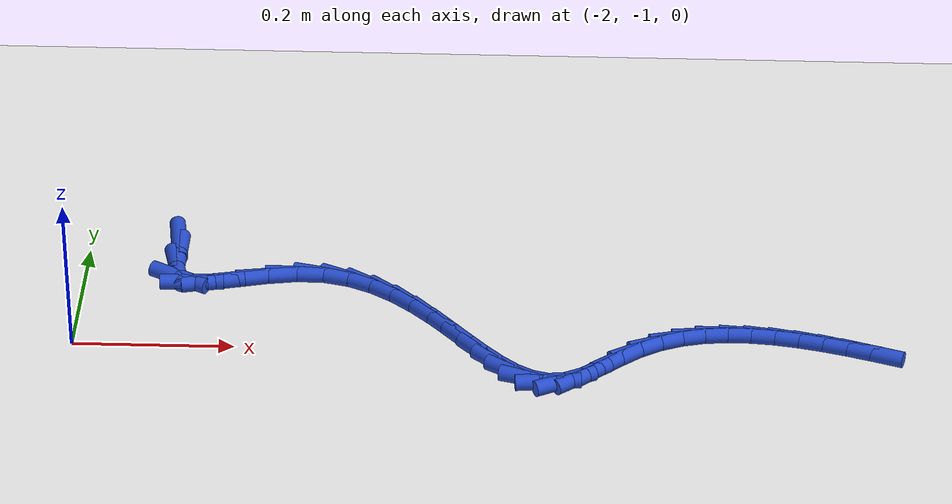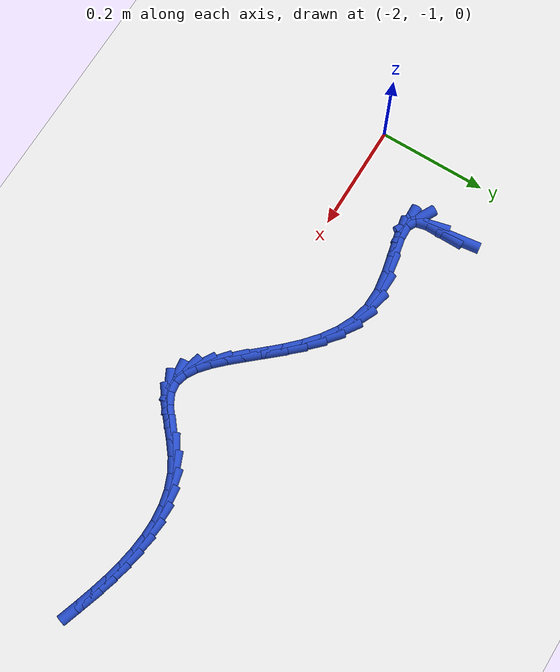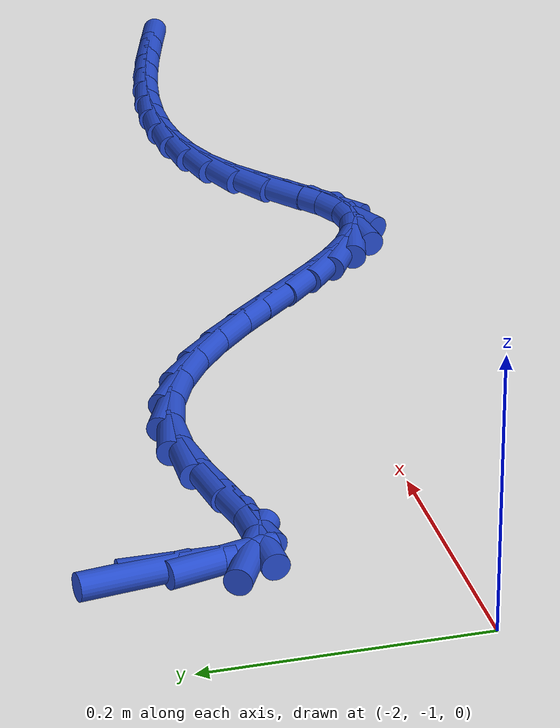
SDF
<sdf version="1.6">
 <world name="default">
  <model name="ground_plane">
   <static>1</static>
   <link name="link">
    <collision name="collision">
     <geometry><plane><normal>0 0 1</normal><size>100 100</size></plane></geometry>
     <surface><friction><ode><mu>100</mu><mu2>50</mu2></ode></friction></surface>
    </collision>
    <visual name="visual">
     <cast_shadows>0</cast_shadows>
     <geometry><plane><normal>0 0 1</normal><size>100 100</size></plane></geometry>
     <material>
      <script><uri>file://media/materials/scripts/gazebo.material</uri><name>Gazebo/WhiteGlow</name></script>
     </material>
    </visual>
   </link>
  </model>
  <model name="line">
   <link name="link_189">
    <pose>-1.8894098902142313 -0.7863409805714017 0.01 0 1.57 -1.4395457866967434</pose>
    <collision name="collision">
     <geometry><cylinder><radius>0.01</radius><length>0.08</length></cylinder></geometry>
    </collision>
    <visual name="visual">
     <material>
      <script><name>Gazebo/Blue</name><uri>file://media/materials/scripts/gazebo.material</uri></script>
     </material>
     <geometry><cylinder><radius>0.01</radius><length>0.08</length></cylinder></geometry>
    </visual>
   </link>
   <link name="link_190">
    <pose>-1.8855369141862686 -0.8156796096133156 0.01 0 1.57 1.5640217590703558</pose>
    <collision name="collision">
     <geometry><cylinder><radius>0.01</radius><length>0.08</length></cylinder></geometry>
    </collision>
    <visual name="visual">
     <material>
      <script><name>Gazebo/Blue</name><uri>file://media/materials/scripts/gazebo.material</uri></script>
     </material>
     <geometry><cylinder><radius>0.01</radius><length>0.08</length></cylinder></geometry>
    </visual>
   </link>
   <link name="link_191">
    <pose>-1.8857432846436641 -0.8461416713519965 0.01 0 1.57 -1.3287690536750156</pose>
    <collision name="collision">
     <geometry><cylinder><radius>0.01</radius><length>0.08</length></cylinder></geometry>
    </collision>
    <visual name="visual">
     <material>
      <script><name>Gazebo/Blue</name><uri>file://media/materials/scripts/gazebo.material</uri></script>
     </material>
     <geometry><cylinder><radius>0.01</radius><length>0.08</length></cylinder></geometry>
    </visual>
   </link>
   <link name="link_192">
    <pose>-1.8802983197763916 -0.8681979890209356 0.01 0 1.57 -0.48498866388643797</pose>
    <collision name="collision">
     <geometry><cylinder><radius>0.01</radius><length>0.08</length></cylinder></geometry>
    </collision>
    <visual name="visual">
     <material>
      <script><name>Gazebo/Blue</name><uri>file://media/materials/scripts/gazebo.material</uri></script>
     </material>
     <geometry><cylinder><radius>0.01</radius><length>0.08</length></cylinder></geometry>
    </visual>
   </link>
   <link name="link_193">
    <pose>-1.8636307922867361 -0.8769812456063315 0.01 0 1.57 0.03942012449810895</pose>
    <collision name="collision">
     <geometry><cylinder><radius>0.01</radius><length>0.08</length></cylinder></geometry>
    </collision>
    <visual name="visual">
     <material>
      <script><name>Gazebo/Blue</name><uri>file://media/materials/scripts/gazebo.material</uri></script>
     </material>
     <geometry><cylinder><radius>0.01</radius><length>0.08</length></cylinder></geometry>
    </visual>
   </link>
   <link name="link_194">
    <pose>-1.8378860115914817 -0.875965857138631 0.01 0 1.57 0.20562601701934738</pose>
    <collision name="collision">
     <geometry><cylinder><radius>0.01</radius><length>0.08</length></cylinder></geometry>
    </collision>
    <visual name="visual">
     <material>
      <script><name>Gazebo/Blue</name><uri>file://media/materials/scripts/gazebo.material</uri></script>
     </material>
     <geometry><cylinder><radius>0.01</radius><length>0.08</length></cylinder></geometry>
    </visual>
   </link>
   <link name="link_195">
    <pose>-1.805810015082285 -0.8692756388002602 0.01 0 1.57 0.22711115323753187</pose>
    <collision name="collision">
     <geometry><cylinder><radius>0.01</radius><length>0.08</length></cylinder></geometry>
    </collision>
    <visual name="visual">
     <material>
      <script><name>Gazebo/Blue</name><uri>file://media/materials/scripts/gazebo.material</uri></script>
     </material>
     <geometry><cylinder><radius>0.01</radius><length>0.08</length></cylinder></geometry>
    </visual>
   </link>
   <link name="link_196">
    <pose>-1.7701488401508036 -0.8610344057736447 0.01 0 1.57 0.1540674684337678</pose>
    <collision name="collision">
     <geometry><cylinder><radius>0.01</radius><length>0.08</length></cylinder></geometry>
    </collision>
    <visual name="visual">
     <material>
      <script><name>Gazebo/Blue</name><uri>file://media/materials/scripts/gazebo.material</uri></script>
     </material>
     <geometry><cylinder><radius>0.01</radius><length>0.08</length></cylinder></geometry>
    </visual>
   </link>
   <link name="link_197">
    <pose>-1.733648524188694 -0.85536597324121 0.01 0 1.57 -0.021284213640063485</pose>
    <collision name="collision">
     <geometry><cylinder><radius>0.01</radius><length>0.08</length></cylinder></geometry>
    </collision>
    <visual name="visual">
     <material>
      <script><name>Gazebo/Blue</name><uri>file://media/materials/scripts/gazebo.material</uri></script>
     </material>
     <geometry><cylinder><radius>0.01</radius><length>0.08</length></cylinder></geometry>
    </visual>
   </link>
   <link name="link_198">
    <pose>-1.6988938247660068 -0.8561058114120341 0.01 0 1.57 -0.23961130855271198</pose>
    <collision name="collision">
     <geometry><cylinder><radius>0.01</radius><length>0.08</length></cylinder></geometry>
    </collision>
    <visual name="visual">
     <material>
      <script><name>Gazebo/Blue</name><uri>file://media/materials/scripts/gazebo.material</uri></script>
     </material>
     <geometry><cylinder><radius>0.01</radius><length>0.08</length></cylinder></geometry>
    </visual>
   </link>
   <link name="link_199">
    <pose>-1.6667222102751764 -0.8639654903920865 0.01 0 1.57 -0.4328391825632877</pose>
    <collision name="collision">
     <geometry><cylinder><radius>0.01</radius><length>0.08</length></cylinder></geometry>
    </collision>
    <visual name="visual">
     <material>
      <script><name>Gazebo/Blue</name><uri>file://media/materials/scripts/gazebo.material</uri></script>
     </material>
     <geometry><cylinder><radius>0.01</radius><length>0.08</length></cylinder></geometry>
    </visual>
   </link>
   <link name="link_200">
    <pose>-1.6369016337922344 -0.8777444417300783 0.01 0 1.57 -0.5878060052488386</pose>
    <collision name="collision">
     <geometry><cylinder><radius>0.01</radius><length>0.08</length></cylinder></geometry>
    </collision>
    <visual name="visual">
     <material>
      <script><name>Gazebo/Blue</name><uri>file://media/materials/scripts/gazebo.material</uri></script>
     </material>
     <geometry><cylinder><radius>0.01</radius><length>0.08</length></cylinder></geometry>
    </visual>
   </link>
   <link name="link_201">
    <pose>-1.6091846476123408 -0.8962145626080158 0.01 0 1.57 -0.7034036146765982</pose>
    <collision name="collision">
     <geometry><cylinder><radius>0.01</radius><length>0.08</length></cylinder></geometry>
    </collision>
    <visual name="visual">
     <material>
      <script><name>Gazebo/Blue</name><uri>file://media/materials/scripts/gazebo.material</uri></script>
     </material>
     <geometry><cylinder><radius>0.01</radius><length>0.08</length></cylinder></geometry>
    </visual>
   </link>
   <link name="link_202">
    <pose>-1.5833238040306525 -0.9181477502079082 0.01 0 1.57 -0.783663413718527</pose>
    <collision name="collision">
     <geometry><cylinder><radius>0.01</radius><length>0.08</length></cylinder></geometry>
    </collision>
    <visual name="visual">
     <material>
      <script><name>Gazebo/Blue</name><uri>file://media/materials/scripts/gazebo.material</uri></script>
     </material>
     <geometry><cylinder><radius>0.01</radius><length>0.08</length></cylinder></geometry>
    </visual>
   </link>
   <link name="link_203">
    <pose>-1.5590716553423285 -0.9423159017117614 0.01 0 1.57 -0.832882834018038</pose>
    <collision name="collision">
     <geometry><cylinder><radius>0.01</radius><length>0.08</length></cylinder></geometry>
    </collision>
    <visual name="visual">
     <material>
      <script><name>Gazebo/Blue</name><uri>file://media/materials/scripts/gazebo.material</uri></script>
     </material>
     <geometry><cylinder><radius>0.01</radius><length>0.08</length></cylinder></geometry>
    </visual>
   </link>
   <link name="link_204">
    <pose>-1.5361807538425285 -0.9674909143015831 0.01 0 1.57 -0.8532716919302035</pose>
    <collision name="collision">
     <geometry><cylinder><radius>0.01</radius><length>0.08</length></cylinder></geometry>
    </collision>
    <visual name="visual">
     <material>
      <script><name>Gazebo/Blue</name><uri>file://media/materials/scripts/gazebo.material</uri></script>
     </material>
     <geometry><cylinder><radius>0.01</radius><length>0.08</length></cylinder></geometry>
    </visual>
   </link>
   <link name="link_205">
    <pose>-1.5144036518264108 -0.9924446851593804 0.01 0 1.57 -0.843728086802676</pose>
    <collision name="collision">
     <geometry><cylinder><radius>0.01</radius><length>0.08</length></cylinder></geometry>
    </collision>
    <visual name="visual">
     <material>
      <script><name>Gazebo/Blue</name><uri>file://media/materials/scripts/gazebo.material</uri></script>
     </material>
     <geometry><cylinder><radius>0.01</radius><length>0.08</length></cylinder></geometry>
    </visual>
   </link>
   <link name="link_206">
    <pose>-1.4934929015891345 -1.015949111467161 0.01 0 1.57 -0.7984117299584222</pose>
    <collision name="collision">
     <geometry><cylinder><radius>0.01</radius><length>0.08</length></cylinder></geometry>
    </collision>
    <visual name="visual">
     <material>
      <script><name>Gazebo/Blue</name><uri>file://media/materials/scripts/gazebo.material</uri></script>
     </material>
     <geometry><cylinder><radius>0.01</radius><length>0.08</length></cylinder></geometry>
    </visual>
   </link>
   <link name="link_207">
    <pose>-1.4732010554258579 -1.0367760904069314 0.01 0 1.57 -0.7041762384303696</pose>
    <collision name="collision">
     <geometry><cylinder><radius>0.01</radius><length>0.08</length></cylinder></geometry>
    </collision>
    <visual name="visual">
     <material>
      <script><name>Gazebo/Blue</name><uri>file://media/materials/scripts/gazebo.material</uri></script>
     </material>
     <geometry><cylinder><radius>0.01</radius><length>0.08</length></cylinder></geometry>
    </visual>
   </link>
   <link name="link_208">
    <pose>-1.45328066563174 -1.0536975191606992 0.01 0 1.57 -0.5370679637485223</pose>
    <collision name="collision">
     <geometry><cylinder><radius>0.01</radius><length>0.08</length></cylinder></geometry>
    </collision>
    <visual name="visual">
     <material>
      <script><name>Gazebo/Blue</name><uri>file://media/materials/scripts/gazebo.material</uri></script>
     </material>
     <geometry><cylinder><radius>0.01</radius><length>0.08</length></cylinder></geometry>
    </visual>
   </link>
   <link name="link_209">
    <pose>-1.4334842845019402 -1.065485294910472 0.01 0 1.57 -0.2659409084451657</pose>
    <collision name="collision">
     <geometry><cylinder><radius>0.01</radius><length>0.08</length></cylinder></geometry>
    </collision>
    <visual name="visual">
     <material>
      <script><name>Gazebo/Blue</name><uri>file://media/materials/scripts/gazebo.material</uri></script>
     </material>
     <geometry><cylinder><radius>0.01</radius><length>0.08</length></cylinder></geometry>
    </visual>
   </link>
   <link name="link_210">
    <pose>-1.413564464331616 -1.0709113148382565 0.01 0 1.57 0.10624033454722238</pose>
    <collision name="collision">
     <geometry><cylinder><radius>0.01</radius><length>0.08</length></cylinder></geometry>
    </collision>
    <visual name="visual">
     <material>
      <script><name>Gazebo/Blue</name><uri>file://media/materials/scripts/gazebo.material</uri></script>
     </material>
     <geometry><cylinder><radius>0.01</radius><length>0.08</length></cylinder></geometry>
    </visual>
   </link>
   <link name="link_211">
    <pose>-1.3932737574159275 -1.06874747612606 0.01 0 1.57 0.47067153144658086</pose>
    <collision name="collision">
     <geometry><cylinder><radius>0.01</radius><length>0.08</length></cylinder></geometry>
    </collision>
    <visual name="visual">
     <material>
      <script><name>Gazebo/Blue</name><uri>file://media/materials/scripts/gazebo.material</uri></script>
     </material>
     <geometry><cylinder><radius>0.01</radius><length>0.08</length></cylinder></geometry>
    </visual>
   </link>
   <link name="link_212">
    <pose>-1.372368368254972 -1.0581105843327439 0.01 0 1.57 0.6650915668638743</pose>
    <collision name="collision">
     <geometry><cylinder><radius>0.01</radius><length>0.08</length></cylinder></geometry>
    </collision>
    <visual name="visual">
     <material>
      <script><name>Gazebo/Blue</name><uri>file://media/materials/scripts/gazebo.material</uri></script>
     </material>
     <geometry><cylinder><radius>0.01</radius><length>0.08</length></cylinder></geometry>
    </visual>
   </link>
   <link name="link_213">
    <pose>-1.3506357208111157 -1.041065760962081 0.01 0 1.57 0.718330796964963</pose>
    <collision name="collision">
     <geometry><cylinder><radius>0.01</radius><length>0.08</length></cylinder></geometry>
    </collision>
    <visual name="visual">
     <material>
      <script><name>Gazebo/Blue</name><uri>file://media/materials/scripts/gazebo.material</uri></script>
     </material>
     <geometry><cylinder><radius>0.01</radius><length>0.08</length></cylinder></geometry>
    </visual>
   </link>
   <link name="link_214">
    <pose>-1.327879076019506 -1.0211737458270762 0.01 0 1.57 0.6743582303404305</pose>
    <collision name="collision">
     <geometry><cylinder><radius>0.01</radius><length>0.08</length></cylinder></geometry>
    </collision>
    <visual name="visual">
     <material>
      <script><name>Gazebo/Blue</name><uri>file://media/materials/scripts/gazebo.material</uri></script>
     </material>
     <geometry><cylinder><radius>0.01</radius><length>0.08</length></cylinder></geometry>
    </visual>
   </link>
   <link name="link_215">
    <pose>-1.3039018187685316 -1.0020069846861055 0.01 0 1.57 0.5413865343677706</pose>
    <collision name="collision">
     <geometry><cylinder><radius>0.01</radius><length>0.08</length></cylinder></geometry>
    </collision>
    <visual name="visual">
     <material>
      <script><name>Gazebo/Blue</name><uri>file://media/materials/scripts/gazebo.material</uri></script>
     </material>
     <geometry><cylinder><radius>0.01</radius><length>0.08</length></cylinder></geometry>
    </visual>
   </link>
   <link name="link_216">
    <pose>-1.2785466724942134 -0.9867605313159654 0.01 0 1.57 0.38242128670571385</pose>
    <collision name="collision">
     <geometry><cylinder><radius>0.01</radius><length>0.08</length></cylinder></geometry>
    </collision>
    <visual name="visual">
     <material>
      <script><name>Gazebo/Blue</name><uri>file://media/materials/scripts/gazebo.material</uri></script>
     </material>
     <geometry><cylinder><radius>0.01</radius><length>0.08</length></cylinder></geometry>
    </visual>
   </link>
   <link name="link_217">
    <pose>-1.251924958143509 -0.9760526654891483 0.01 0 1.57 0.23514205180005554</pose>
    <collision name="collision">
     <geometry><cylinder><radius>0.01</radius><length>0.08</length></cylinder></geometry>
    </collision>
    <visual name="visual">
     <material>
      <script><name>Gazebo/Blue</name><uri>file://media/materials/scripts/gazebo.material</uri></script>
     </material>
     <geometry><cylinder><radius>0.01</radius><length>0.08</length></cylinder></geometry>
    </visual>
   </link>
   <link name="link_218">
    <pose>-1.2242602345420925 -0.9694249196651847 0.01 0 1.57 0.10527314132438631</pose>
    <collision name="collision">
     <geometry><cylinder><radius>0.01</radius><length>0.08</length></cylinder></geometry>
    </collision>
    <visual name="visual">
     <material>
      <script><name>Gazebo/Blue</name><uri>file://media/materials/scripts/gazebo.material</uri></script>
     </material>
     <geometry><cylinder><radius>0.01</radius><length>0.08</length></cylinder></geometry>
    </visual>
   </link>
   <link name="link_219">
    <pose>-1.1957764370219612 -0.96641521431294 0.01 0 1.57 -0.005029563480132914</pose>
    <collision name="collision">
     <geometry><cylinder><radius>0.01</radius><length>0.08</length></cylinder></geometry>
    </collision>
    <visual name="visual">
     <material>
      <script><name>Gazebo/Blue</name><uri>file://media/materials/scripts/gazebo.material</uri></script>
     </material>
     <geometry><cylinder><radius>0.01</radius><length>0.08</length></cylinder></geometry>
    </visual>
   </link>
   <link name="link_220">
    <pose>-1.1666975009151106 -0.9665614699012781 0.01 0 1.57 -0.09614151306870033</pose>
    <collision name="collision">
     <geometry><cylinder><radius>0.01</radius><length>0.08</length></cylinder></geometry>
    </collision>
    <visual name="visual">
     <material>
      <script><name>Gazebo/Blue</name><uri>file://media/materials/scripts/gazebo.material</uri></script>
     </material>
     <geometry><cylinder><radius>0.01</radius><length>0.08</length></cylinder></geometry>
    </visual>
   </link>
   <link name="link_221">
    <pose>-1.137247361553537 -0.9694016068990643 0.01 0 1.57 -0.16971583329574405</pose>
    <collision name="collision">
     <geometry><cylinder><radius>0.01</radius><length>0.08</length></cylinder></geometry>
    </collision>
    <visual name="visual">
     <material>
      <script><name>Gazebo/Blue</name><uri>file://media/materials/scripts/gazebo.material</uri></script>
     </material>
     <geometry><cylinder><radius>0.01</radius><length>0.08</length></cylinder></geometry>
    </visual>
   </link>
   <link name="link_222">
    <pose>-1.1076499542692364 -0.9744735457751627 0.01 0 1.57 -0.22773721370164465</pose>
    <collision name="collision">
     <geometry><cylinder><radius>0.01</radius><length>0.08</length></cylinder></geometry>
    </collision>
    <visual name="visual">
     <material>
      <script><name>Gazebo/Blue</name><uri>file://media/materials/scripts/gazebo.material</uri></script>
     </material>
     <geometry><cylinder><radius>0.01</radius><length>0.08</length></cylinder></geometry>
    </visual>
   </link>
   <link name="link_223">
    <pose>-1.0781292143942052 -0.9813152069984379 0.01 0 1.57 -0.2719822791757523</pose>
    <collision name="collision">
     <geometry><cylinder><radius>0.01</radius><length>0.08</length></cylinder></geometry>
    </collision>
    <visual name="visual">
     <material>
      <script><name>Gazebo/Blue</name><uri>file://media/materials/scripts/gazebo.material</uri></script>
     </material>
     <geometry><cylinder><radius>0.01</radius><length>0.08</length></cylinder></geometry>
    </visual>
   </link>
   <link name="link_224">
    <pose>-1.0489090772604392 -0.9894645110377549 0.01 0 1.57 -0.3037574697465649</pose>
    <collision name="collision">
     <geometry><cylinder><radius>0.01</radius><length>0.08</length></cylinder></geometry>
    </collision>
    <visual name="visual">
     <material>
      <script><name>Gazebo/Blue</name><uri>file://media/materials/scripts/gazebo.material</uri></script>
     </material>
     <geometry><cylinder><radius>0.01</radius><length>0.08</length></cylinder></geometry>
    </visual>
   </link>
   <link name="link_225">
    <pose>-1.020213478199935 -0.9984593783619782 0.01 0 1.57 -0.32399173233592216</pose>
    <collision name="collision">
     <geometry><cylinder><radius>0.01</radius><length>0.08</length></cylinder></geometry>
    </collision>
    <visual name="visual">
     <material>
      <script><name>Gazebo/Blue</name><uri>file://media/materials/scripts/gazebo.material</uri></script>
     </material>
     <geometry><cylinder><radius>0.01</radius><length>0.08</length></cylinder></geometry>
    </visual>
   </link>
  </model>
 </world>
</sdf>
